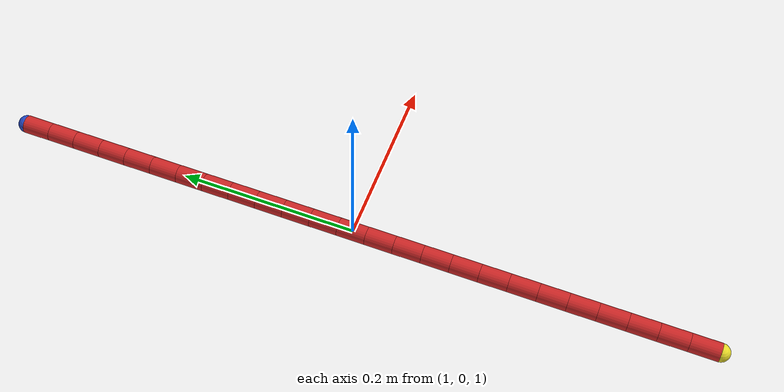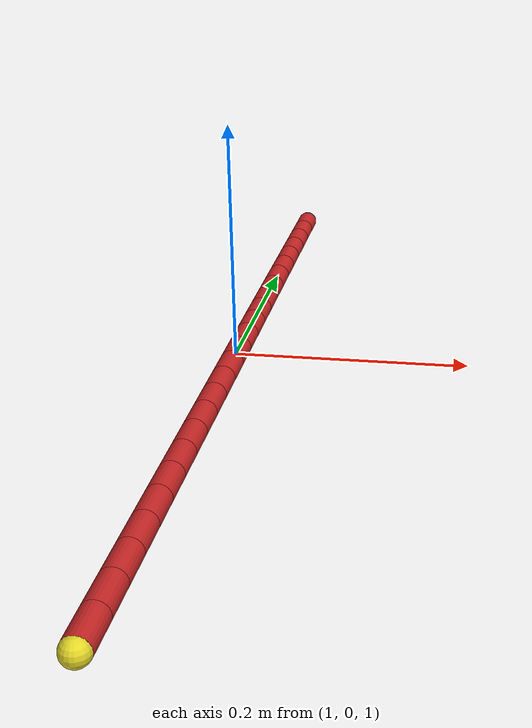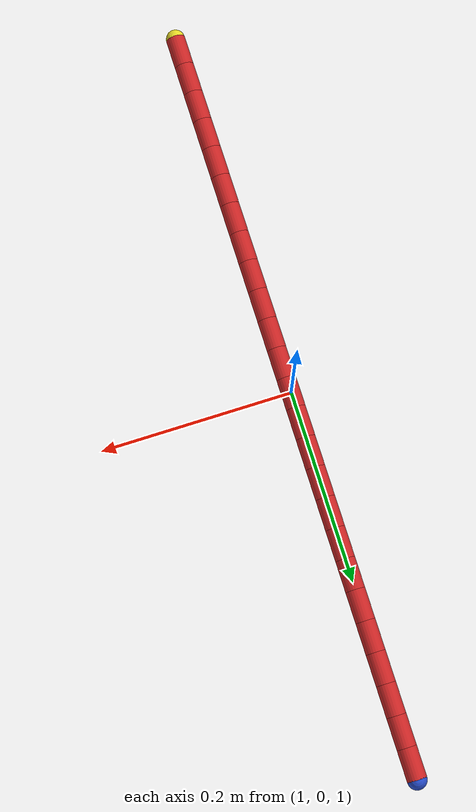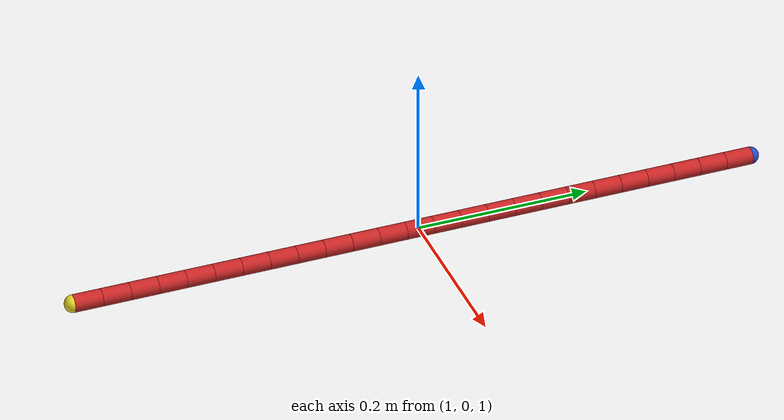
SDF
<sdf version="1.6">
 <world name="default">
  <scene>
   <grid>false</grid>
   <origin_visual>false</origin_visual>
   <sky><clouds><speed>12</speed></clouds></sky>
  </scene>
  <physics name="ode" type="ode">
   <max_step_size>0.01</max_step_size>
   <real_time_factor>1</real_time_factor>
   <real_time_update_rate>0</real_time_update_rate>
   <ode>
    <solver>
     <island_threads>2</island_threads>
     <type>quick</type>
     <iters>100</iters>
     <sor>1.0</sor>
     <use_dynamic_moi_rescaling>false</use_dynamic_moi_rescaling>
    </solver>
    <constraints><erp>0.2</erp></constraints>
   </ode>
  </physics>
  <plugin name="arm_gazebo_ros" filename="libarm_gazebo_ros_plugin.so"/>
  <plugin name="gazebo_ros_tf_plugin" filename="libgazebo_ros_tf_plugin.so"/>
  <plugin name="position_3d_plugin" filename="libposition_3d_plugin.so"/>
  <plugin name="collision_map_plugin" filename="libcollision_map_plugin.so"/>
  <include><uri>model://sun</uri></include>
  <model name="moveit_plugin_model">
   <plugin name="gazebo_ros_moveit_planning_scene" filename="libgazebo_ros_moveit_planning_scene.so">
    <frameId>robot_root</frameId>
   </plugin>
  </model>
  <include><pose>1.0 0.4 1.0 0 0 -1.5707</pose><uri>model://rope_3d_alt</uri></include>
 </world>
</sdf>
